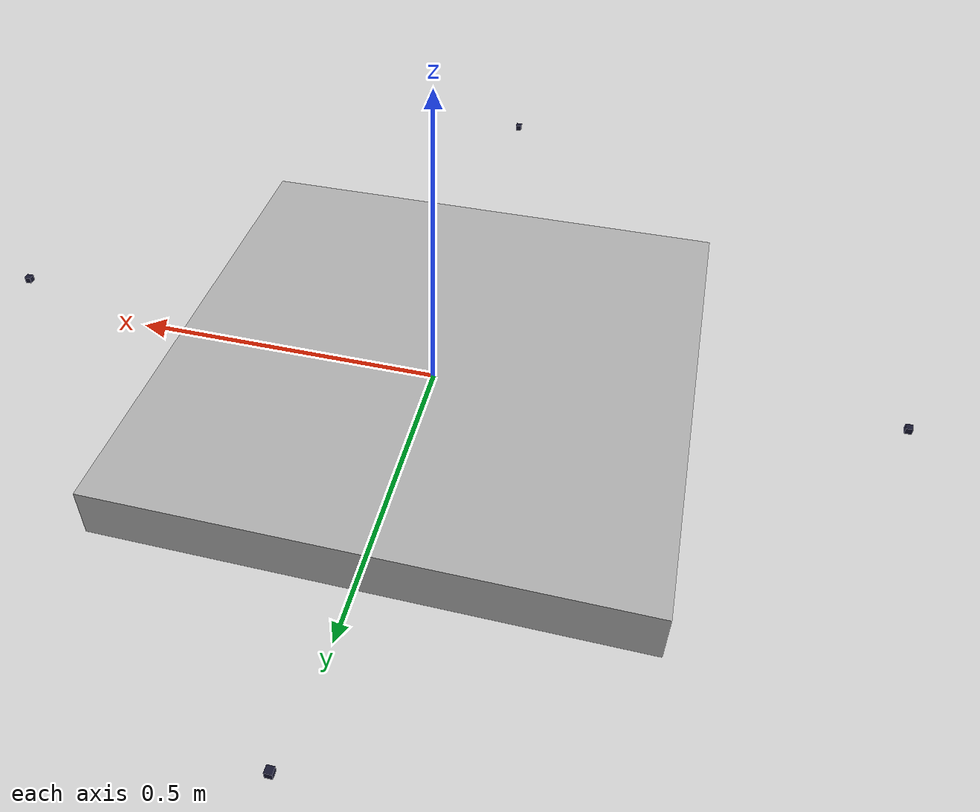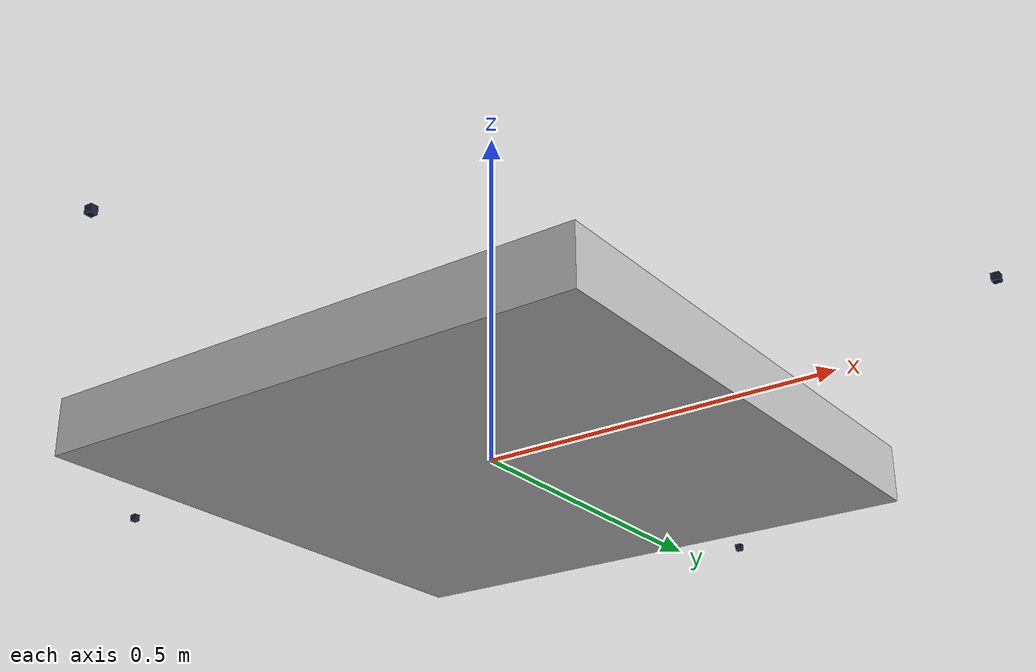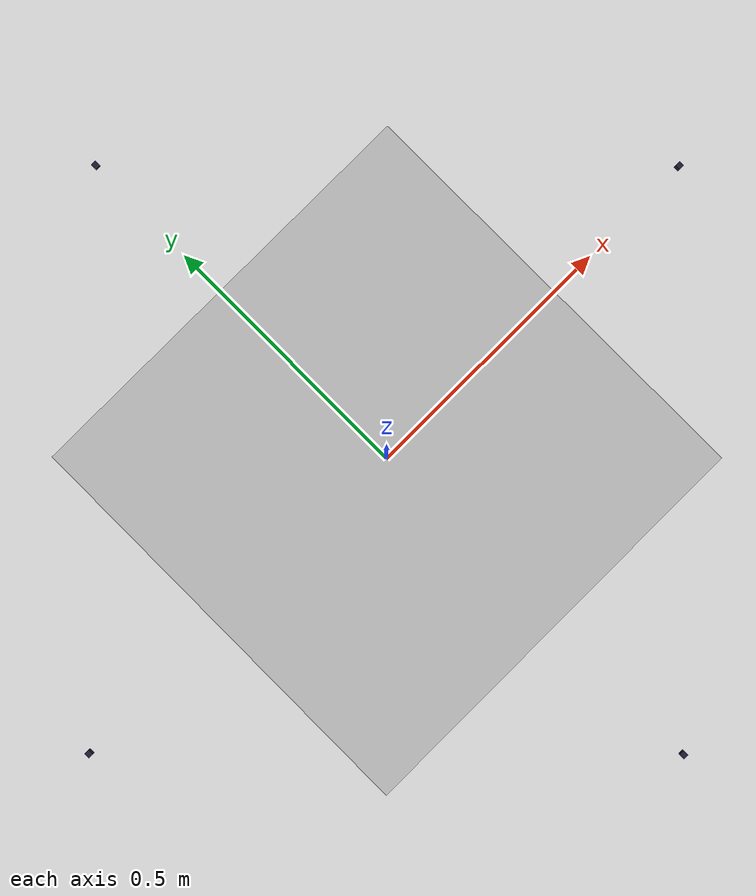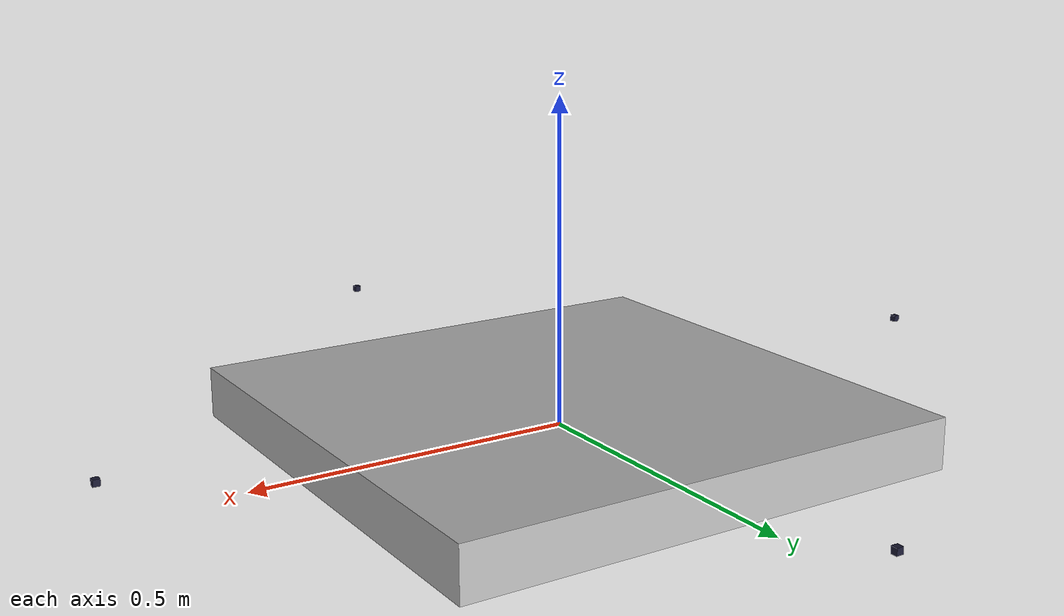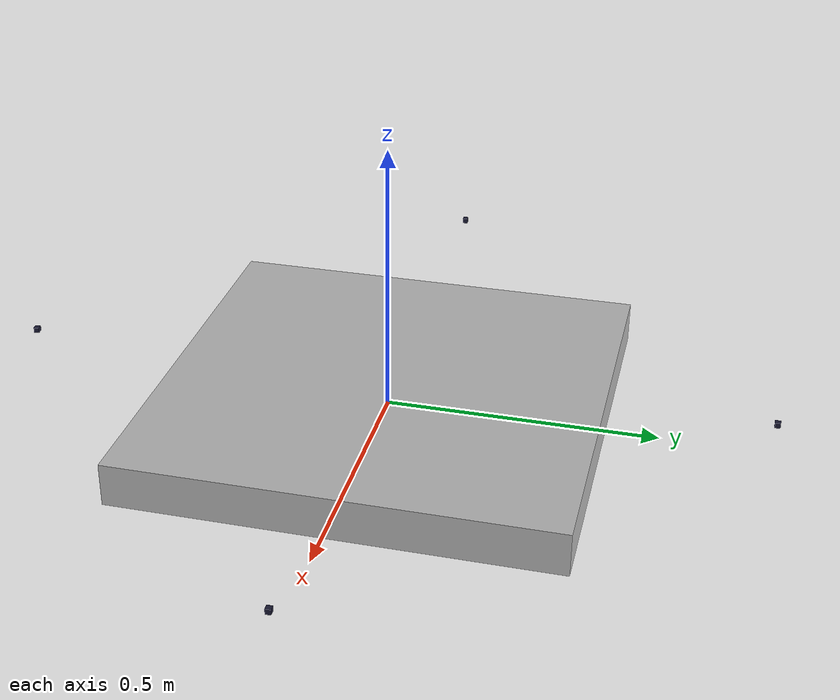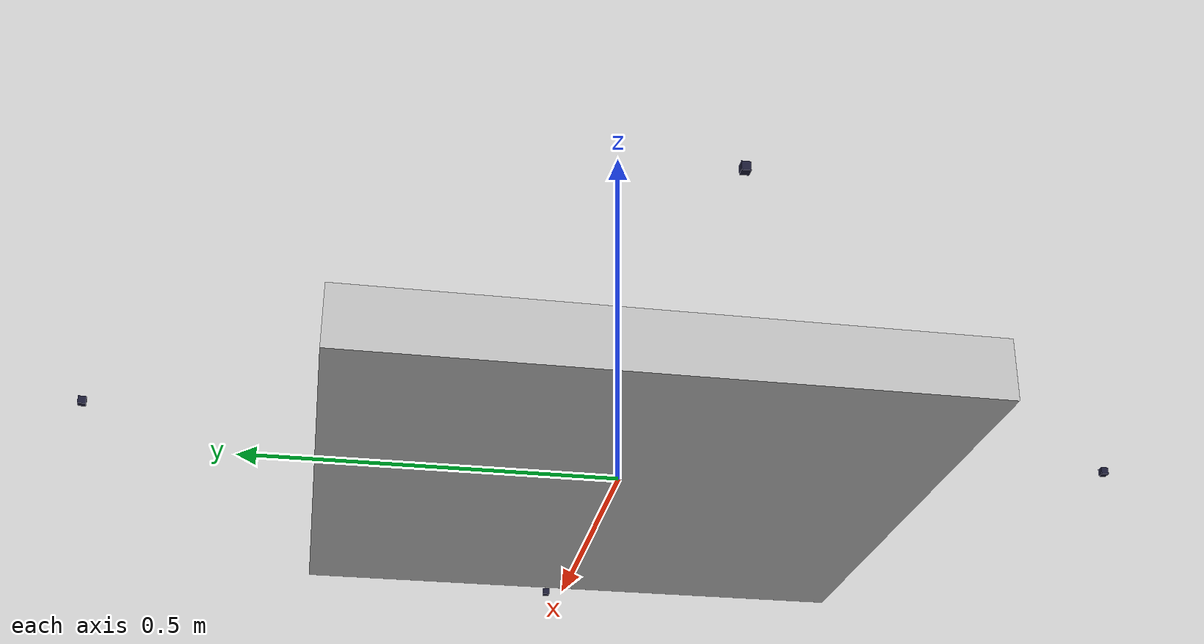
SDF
<?xml version='1.0'?>
<sdf version='1.5'>
  <model name="payload_rec">
        <static>false</static>

<link name="payload_rec">
      <pose>0 0 0.0125 0 0 0</pose>
            <inertial>
              <inertia>
                <ixx>0.3</ixx>
                <ixy>0</ixy>
                <ixz>0</ixz>
                <iyy>0.3</iyy>
                <iyz>0</iyz>
                <izz>0.1</izz>
              </inertia>
              <mass>0.05</mass>
            </inertial>

            <collision name="my_collision">
                <geometry>
                <box>
                <size>0.8 0.8 0.08</size>
                </box>
                </geometry>
            </collision>

            <visual name="my_visual">
                <geometry>
                <box>
                <size>0.8 0.8 0.08</size>
                </box>
                </geometry>

            </visual>

        </link>

<link name="payload_rec_g1_box">
      <pose>-0.7 0 0.06 0 0 0</pose>
        <inertial>
          <inertia>
            <ixx>0.02</ixx>
            <ixy>0</ixy>
            <ixz>0</ixz>
            <iyy>0.02</iyy>
            <iyz>0</iyz>
            <izz>0.01</izz>
          </inertia>
          <mass>0.01</mass>
        </inertial>

        <visual name="payload_rec_g1_box_visual">
            <geometry>
             <box>
             <size>0.01 0.01 0.01</size>
             </box>
            </geometry>
            <material>
              <ambient>0.1 0.1 0.1 1</ambient>
              <diffuse>0.1 0.1 0.2 1</diffuse>
              <specular>0 0 0 0</specular>
              <emissive>0 0 0 1</emissive>
            </material>
        </visual>
    </link>

<link name="payload_rec_g2_box">
      <pose>0.7 0 0.06 0 0 0</pose>
        <inertial>
          <inertia>
            <ixx>0.02</ixx>
            <ixy>0</ixy>
            <ixz>0</ixz>
            <iyy>0.02</iyy>
            <iyz>0</iyz>
            <izz>0.01</izz>
          </inertia>
          <mass>0.01</mass>
        </inertial>

        <visual name="payload_rec_g2_box_visual">
            <geometry>
             <box>
             <size>0.01 0.01 0.01</size>
             </box>
            </geometry>
            <material>
              <ambient>0.1 0.1 0.1 1</ambient>
              <diffuse>0.1 0.1 0.2 1</diffuse>
              <specular>0 0 0 0</specular>
              <emissive>0 0 0 1</emissive>
            </material>
        </visual>
    </link>

<link name="payload_rec_g3_box">
    <pose>0 0.70 0.06 0 0 0</pose>
        <inertial>
          <inertia>
            <ixx>0.02</ixx>
            <ixy>0</ixy>
            <ixz>0</ixz>
            <iyy>0.02</iyy>
            <iyz>0</iyz>
            <izz>0.01</izz>
          </inertia>
          <mass>0.01</mass>
        </inertial>

        <visual name="payload_rec_g3_box_visual">
            <geometry>
             <box>
             <size>0.01 0.01 0.01</size>
             </box>
            </geometry>
                        <material>
              <ambient>0.1 0.1 0.1 1</ambient>
              <diffuse>0.1 0.1 0.2 1</diffuse>
              <specular>0 0 0 0</specular>
              <emissive>0 0 0 1</emissive>
            </material>
        </visual>
    </link>
<link name="payload_rec_g4_box">
      <pose>0 -0.70 0.06 0 0 0</pose>
        <inertial>
          <inertia>
            <ixx>0.02</ixx>
            <ixy>0</ixy>
            <ixz>0</ixz>
            <iyy>0.02</iyy>
            <iyz>0</iyz>
            <izz>0.01</izz>
          </inertia>
          <mass>0.01</mass>
        </inertial>

        <visual name="payload_rec_g4_box_visual">
            <geometry>
             <box>
             <size>0.01 0.01 0.01</size>
             </box>
            </geometry>
                        <material>
              <ambient>0.1 0.1 0.1 1</ambient>
              <diffuse>0.1 0.1 0.2 1</diffuse>
              <specular>0 0 0 0</specular>
              <emissive>0 0 0 1</emissive>
            </material>
        </visual>
    </link>
<!-- link1 -->
<link name="payload_link1_box">
        <pose>-0.7 0.0  0.06 0.0 0  0</pose>
	<gravity>1</gravity>
		 <inertial>
          <inertia>
            <ixx>0.1</ixx>
            <ixy>0</ixy>
            <ixz>0</ixz>
            <iyy>0.1</iyy>
            <iyz>0</iyz>
            <izz>0.01</izz>
          </inertia>
          <mass>0.01</mass>
        </inertial>
        <visual name="visual_payload_link1">
          <geometry>
           <box>
             <size>0.01 0.01 0.01</size>
             </box>
          </geometry>
        </visual>
      </link>
<joint name="payload_link_joint1" type="fixed">
      <parent>payload::payload_rec_g1_box</parent>
      <child>payload::payload_link1_box</child>
      <pose>-0.00 0.0 0.00 0 0.0 0.0</pose>
</joint>

<joint name="payload_link_joint2" type="fixed">
      <parent>payload::payload_rec</parent>
      <child>payload::payload_rec_g1_box</child>
      <origin>-0.00 0.0 -0 0 0.0 0.0</origin>
 </joint>

<!-- link2 -->
<link name="payload_link2_box">
        <pose>0.7 0.0  0.06 0 0.0 0</pose>
	<gravity>1</gravity>
		 <inertial>
          <inertia>
            <ixx>0.1</ixx>
            <ixy>0</ixy>
            <ixz>0</ixz>
            <iyy>0.1</iyy>
            <iyz>0</iyz>
            <izz>0.01</izz>
          </inertia>
          <mass>0.01</mass>
        </inertial>

        <visual name="visual_payload_link2">
          <geometry>
           <box>
             <size>0.01 0.01 0.01</size>
             </box>
          </geometry>
        </visual>
      </link>
<joint name="payload_link_joint3" type="fixed">
      <parent>payload::payload_rec_g2_box</parent>
      <child>payload::payload_link2_box</child>
      <pose>-0.00 0.0 0.00 0 0.0 0.0</pose>
</joint>

<joint name="payload_link_joint4" type="fixed">
    <parent>payload::payload_rec</parent>
    <child>payload::payload_rec_g2_box</child>
    <pose>-0.00 0.0 -0 0 0.0 0.0</pose>
  </joint>

<!-- link3 -->
<link name="payload_link3_box">
        <pose>0.0 0.70  0.06 0.0 0  0</pose>
	<gravity>1</gravity>
		 <inertial>
          <inertia>
            <ixx>0.1</ixx>
            <ixy>0</ixy>
            <ixz>0</ixz>
            <iyy>0.1</iyy>
            <iyz>0</iyz>
            <izz>0.01</izz>
          </inertia>
          <mass>0.01</mass>
        </inertial>

        <visual name="visual_payload_link3">
          <geometry>
           <box>
             <size>0.01 0.01 0.01</size>
             </box>
          </geometry>
        </visual>
      </link>
<joint name="payload_link_joint5" type="fixed">
      <parent>payload::payload_rec_g3_box</parent>
      <child>payload::payload_link3_box</child>
      <pose>-0.00 0.0 0.00 0 0.0 0.0</pose>
    </joint>

<joint name="payload_link_joint6" type="fixed">
      <parent>payload::payload_rec</parent>
      <child>payload::payload_rec_g3_box</child>
      <pose>-0.00 0.0 -0 0 0.0 0.0</pose>
  </joint>

<!-- link4 -->
<link name="payload_link4_box">
        <pose>0.0 -0.70  0.06 0.0 0  0</pose>
	<gravity>1</gravity>
		 <inertial>
          <inertia>
            <ixx>0.1</ixx>
            <ixy>0</ixy>
            <ixz>0</ixz>
            <iyy>0.1</iyy>
            <iyz>0</iyz>
            <izz>0.01</izz>
          </inertia>
          <mass>0.01</mass>
        </inertial>

        <visual name="visual_payload_link4">
          <geometry>
           <box>
             <size>0.01 0.01 0.01</size>
             </box>
          </geometry>
        </visual>
      </link>
<joint name="payload_link_joint7" type="fixed">
      <parent>payload::payload_rec_g4_box</parent>
      <child>payload::payload_link4_box</child>
      <pose>-0.00 0.0 0.00 0 0.0 0.0</pose>
</joint>

<joint name="payload_link_joint8" type="fixed">
      <parent>payload::payload_rec</parent>
      <child>payload::payload_rec_g4_box</child>
      <pose>-0.00 0.0 -0 0 0.0 0.0</pose>
  </joint>
</model>
</sdf>
